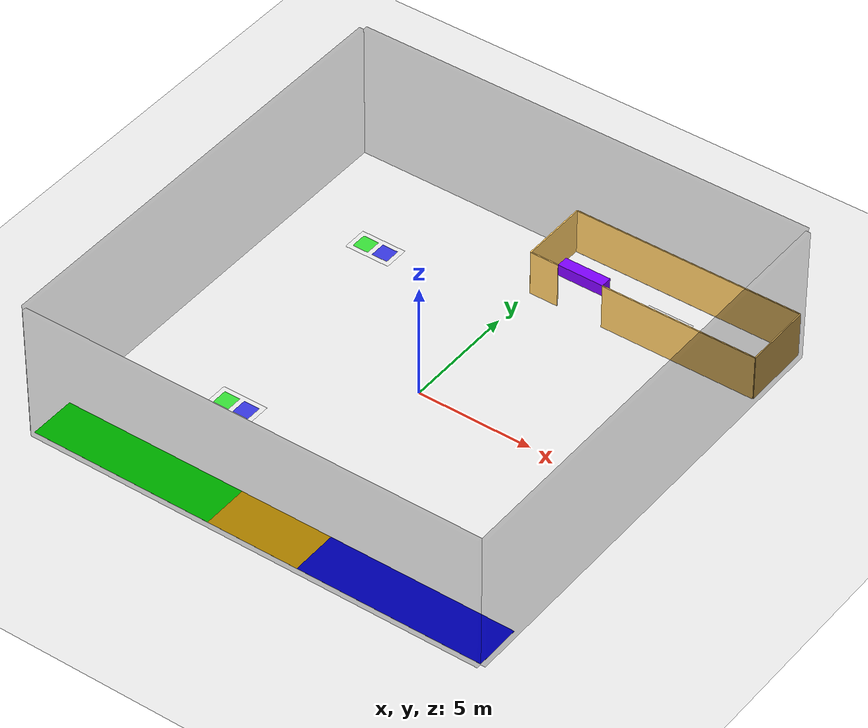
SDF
<sdf version="1.11">
 <world name="safmc_d2">
  <gravity>0 0 -9.8000000000000007</gravity>
  <magnetic_field>6.0000000000000002e-06 2.3e-05 -4.1999999999999998e-05</magnetic_field>
  <wind><linear_velocity>0 0 0</linear_velocity></wind>
  <physics name="default_physics" default="false" type="ode">
   <max_step_size>0.0040000000000000001</max_step_size>
   <real_time_factor>1</real_time_factor>
   <max_contacts>20</max_contacts>
  </physics>
  <model name="ground_plane">
   <static>true</static>
   <link name="link">
    <inertial>
     <mass>1</mass>
     <inertia><ixx>1</ixx><ixy>0</ixy><ixz>0</ixz><iyy>1</iyy><iyz>0</iyz><izz>1</izz></inertia>
    </inertial>
    <collision name="collision">
     <geometry><plane><normal>0 0 1</normal><size>1 1</size></plane></geometry>
     <surface>
      <contact><collide_bitmask>255</collide_bitmask></contact>
      <friction><ode><mu>1</mu><mu2>1</mu2><slip1>0</slip1><slip2>0</slip2><fdir1>0 0 0</fdir1></ode></friction>
     </surface>
    </collision>
    <visual name="visual">
     <geometry><plane><normal>0 0 1</normal><size>100 100</size></plane></geometry>
     <visibility_flags>4294967295</visibility_flags>
     <material>
      <ambient>0.800000012 0.800000012 0.800000012 1</ambient>
      <diffuse>0.800000012 0.800000012 0.800000012 1</diffuse>
      <specular>0.800000012 0.800000012 0.800000012 1</specular>
      <emissive>0 0 0 1</emissive>
      <render_order>0</render_order>
      <lighting>true</lighting>
      <double_sided>false</double_sided>
      <shader type="pixel"/>
     </material>
    </visual>
   </link>
  </model>
  <include>
   <uri>model://wall</uri>
   <name>front_wall</name>
   <pose>0 -10.1 2 0 0 0</pose>
   <static>true</static>
  </include>
  <include>
   <uri>model://wall</uri>
   <name>back_wall</name>
   <pose>0 10.1 2 0 0 0</pose>
   <static>true</static>
  </include>
  <include>
   <uri>model://wall</uri>
   <name>left_wall</name>
   <pose>-10.1 0 2 0 0 1.5707959999999999</pose>
   <static>true</static>
  </include>
  <include>
   <uri>model://wall</uri>
   <name>right_wall</name>
   <pose>10.1 0 2 0 0 1.5707959999999999</pose>
   <static>true</static>
  </include>
  <model name="launch_zone">
   <static>true</static>
   <pose>0 -9 0.001 0 0 0</pose>
   <link name="link">
    <inertial>
     <mass>1</mass>
     <inertia><ixx>1</ixx><ixy>0</ixy><ixz>0</ixz><iyy>1</iyy><iyz>0</iyz><izz>1</izz></inertia>
    </inertial>
    <visual name="visual">
     <geometry><plane><normal>0 0 1</normal><size>4 2</size></plane></geometry>
     <visibility_flags>4294967295</visibility_flags>
     <material>
      <ambient>1 0.75 0 1</ambient>
      <diffuse>1 0.75 0 1</diffuse>
      <specular>1 0.75 0 1</specular>
      <emissive>0 0 0 1</emissive>
      <render_order>0</render_order>
      <lighting>true</lighting>
      <double_sided>false</double_sided>
      <shader type="pixel"/>
     </material>
    </visual>
   </link>
  </model>
  <model name="green_supply_zone">
   <static>true</static>
   <pose>-6 -9 0 0 0 0</pose>
   <link name="link">
    <pose>0 0 0.001 0 0 0</pose>
    <inertial>
     <mass>1</mass>
     <inertia><ixx>1</ixx><ixy>0</ixy><ixz>0</ixz><iyy>1</iyy><iyz>0</iyz><izz>1</izz></inertia>
    </inertial>
    <visual name="visual">
     <geometry><plane><normal>0 0 1</normal><size>8 2</size></plane></geometry>
     <visibility_flags>4294967295</visibility_flags>
     <material>
      <ambient>0 1 0 1</ambient>
      <diffuse>0 1 0 1</diffuse>
      <specular>0 1 0 1</specular>
      <emissive>0 0 0 1</emissive>
      <render_order>0</render_order>
      <lighting>true</lighting>
      <double_sided>false</double_sided>
      <shader type="pixel"/>
     </material>
    </visual>
   </link>
  </model>
  <model name="blue_supply_zone">
   <static>true</static>
   <pose>6 -9 0 0 0 0</pose>
   <link name="link">
    <pose>0 0 0.001 0 0 0</pose>
    <inertial>
     <mass>1</mass>
     <inertia><ixx>1</ixx><ixy>0</ixy><ixz>0</ixz><iyy>1</iyy><iyz>0</iyz><izz>1</izz></inertia>
    </inertial>
    <visual name="visual">
     <geometry><plane><normal>0 0 1</normal><size>8 2</size></plane></geometry>
     <visibility_flags>4294967295</visibility_flags>
     <material>
      <ambient>0 0 1 1</ambient>
      <diffuse>0 0 1 1</diffuse>
      <specular>0 0 1 1</specular>
      <emissive>0 0 0 1</emissive>
      <render_order>0</render_order>
      <lighting>true</lighting>
      <double_sided>false</double_sided>
      <shader type="pixel"/>
     </material>
    </visual>
   </link>
  </model>
  <model name="drop_zone_1">
   <static>true</static>
   <pose>-6.2000000000000002 5.5999999999999996 0 0 0 0</pose>
   <link name="link">
    <inertial>
     <mass>1</mass>
     <inertia><ixx>1</ixx><ixy>0</ixy><ixz>0</ixz><iyy>1</iyy><iyz>0</iyz><izz>1</izz></inertia>
    </inertial>
    <visual name="drop_zone_visual">
     <pose>0 0 0.001 0 0 0</pose>
     <geometry><plane><normal>0 0 1</normal><size>2 1.1000000000000001</size></plane></geometry>
     <visibility_flags>4294967295</visibility_flags>
     <material>
      <ambient>0.899999976 0.899999976 0.899999976 0.5</ambient>
      <diffuse>0.899999976 0.899999976 0.899999976 0.5</diffuse>
      <specular>0.899999976 0.899999976 0.899999976 0.5</specular>
      <emissive>0 0 0 1</emissive>
      <render_order>0</render_order>
      <lighting>true</lighting>
      <double_sided>false</double_sided>
      <shader type="pixel"/>
     </material>
    </visual>
    <visual name="green_hotspot_visual">
     <pose>-0.45000000000000001 0 0.002 0 0 0</pose>
     <geometry><plane><normal>0 0 1</normal><size>0.69999999999999996 0.69999999999999996</size></plane></geometry>
     <visibility_flags>4294967295</visibility_flags>
     <material>
      <ambient>0 0.899999976 0 0.75</ambient>
      <diffuse>0 0.899999976 0 0.75</diffuse>
      <specular>0 0.899999976 0 0.75</specular>
      <emissive>0 0 0 1</emissive>
      <render_order>0</render_order>
      <lighting>true</lighting>
      <double_sided>false</double_sided>
      <shader type="pixel"/>
     </material>
    </visual>
    <visual name="blue_hotspot_visual">
     <pose>0.45000000000000001 0 0.002 0 0 0</pose>
     <geometry><plane><normal>0 0 1</normal><size>0.69999999999999996 0.69999999999999996</size></plane></geometry>
     <visibility_flags>4294967295</visibility_flags>
     <material>
      <ambient>0 0 0.899999976 0.75</ambient>
      <diffuse>0 0 0.899999976 0.75</diffuse>
      <specular>0 0 0.899999976 0.75</specular>
      <emissive>0 0 0 1</emissive>
      <render_order>0</render_order>
      <lighting>true</lighting>
      <double_sided>false</double_sided>
      <shader type="pixel"/>
     </material>
    </visual>
   </link>
  </model>
  <model name="drop_zone_2">
   <static>true</static>
   <pose>-5 -4.5 0 0 0 0</pose>
   <link name="link">
    <inertial>
     <mass>1</mass>
     <inertia><ixx>1</ixx><ixy>0</ixy><ixz>0</ixz><iyy>1</iyy><iyz>0</iyz><izz>1</izz></inertia>
    </inertial>
    <visual name="drop_zone_visual">
     <pose>0 0 0.001 0 0 0</pose>
     <geometry><plane><normal>0 0 1</normal><size>2 1.1000000000000001</size></plane></geometry>
     <visibility_flags>4294967295</visibility_flags>
     <material>
      <ambient>0.899999976 0.899999976 0.899999976 0.5</ambient>
      <diffuse>0.899999976 0.899999976 0.899999976 0.5</diffuse>
      <specular>0.899999976 0.899999976 0.899999976 0.5</specular>
      <emissive>0 0 0 1</emissive>
      <render_order>0</render_order>
      <lighting>true</lighting>
      <double_sided>false</double_sided>
      <shader type="pixel"/>
     </material>
    </visual>
    <visual name="green_hotspot_visual">
     <pose>-0.45000000000000001 0 0.002 0 0 0</pose>
     <geometry><plane><normal>0 0 1</normal><size>0.69999999999999996 0.69999999999999996</size></plane></geometry>
     <visibility_flags>4294967295</visibility_flags>
     <material>
      <ambient>0 0.899999976 0 0.75</ambient>
      <diffuse>0 0.899999976 0 0.75</diffuse>
      <specular>0 0.899999976 0 0.75</specular>
      <emissive>0 0 0 1</emissive>
      <render_order>0</render_order>
      <lighting>true</lighting>
      <double_sided>false</double_sided>
      <shader type="pixel"/>
     </material>
    </visual>
    <visual name="blue_hotspot_visual">
     <pose>0.45000000000000001 0 0.002 0 0 0</pose>
     <geometry><plane><normal>0 0 1</normal><size>0.69999999999999996 0.69999999999999996</size></plane></geometry>
     <visibility_flags>4294967295</visibility_flags>
     <material>
      <ambient>0 0 0.899999976 0.75</ambient>
      <diffuse>0 0 0.899999976 0.75</diffuse>
      <specular>0 0 0.899999976 0.75</specular>
      <emissive>0 0 0 1</emissive>
      <render_order>0</render_order>
      <lighting>true</lighting>
      <double_sided>false</double_sided>
      <shader type="pixel"/>
     </material>
    </visual>
   </link>
  </model>
  <model name="drop_zone_3">
   <static>true</static>
   <pose>7.2000000000000002 0.40000000000000002 0 0 0 1.5707959999999999</pose>
   <link name="link">
    <inertial>
     <mass>1</mass>
     <inertia><ixx>1</ixx><ixy>0</ixy><ixz>0</ixz><iyy>1</iyy><iyz>0</iyz><izz>1</izz></inertia>
    </inertial>
    <visual name="drop_zone_visual">
     <pose>0 0 0.001 0 0 0</pose>
     <geometry><plane><normal>0 0 1</normal><size>2 1.1000000000000001</size></plane></geometry>
     <visibility_flags>4294967295</visibility_flags>
     <material>
      <ambient>0.899999976 0.899999976 0.899999976 0.5</ambient>
      <diffuse>0.899999976 0.899999976 0.899999976 0.5</diffuse>
      <specular>0.899999976 0.899999976 0.899999976 0.5</specular>
      <emissive>0 0 0 1</emissive>
      <render_order>0</render_order>
      <lighting>true</lighting>
      <double_sided>false</double_sided>
      <shader type="pixel"/>
     </material>
    </visual>
    <visual name="green_hotspot_visual">
     <pose>-0.45000000000000001 0 0.002 0 0 0</pose>
     <geometry><plane><normal>0 0 1</normal><size>0.69999999999999996 0.69999999999999996</size></plane></geometry>
     <visibility_flags>4294967295</visibility_flags>
     <material>
      <ambient>0 0.899999976 0 0.75</ambient>
      <diffuse>0 0.899999976 0 0.75</diffuse>
      <specular>0 0.899999976 0 0.75</specular>
      <emissive>0 0 0 1</emissive>
      <render_order>0</render_order>
      <lighting>true</lighting>
      <double_sided>false</double_sided>
      <shader type="pixel"/>
     </material>
    </visual>
    <visual name="blue_hotspot_visual">
     <pose>0.45000000000000001 0 0.002 0 0 0</pose>
     <geometry><plane><normal>0 0 1</normal><size>0.69999999999999996 0.69999999999999996</size></plane></geometry>
     <visibility_flags>4294967295</visibility_flags>
     <material>
      <ambient>0 0 0.899999976 0.75</ambient>
      <diffuse>0 0 0.899999976 0.75</diffuse>
      <specular>0 0 0.899999976 0.75</specular>
      <emissive>0 0 0 1</emissive>
      <render_order>0</render_order>
      <lighting>true</lighting>
      <double_sided>false</double_sided>
      <shader type="pixel"/>
     </material>
    </visual>
   </link>
  </model>
  <model name="drop_zone_4">
   <static>true</static>
   <pose>5 8.5 0 0 0 0</pose>
   <link name="link">
    <inertial>
     <mass>1</mass>
     <inertia><ixx>1</ixx><ixy>0</ixy><ixz>0</ixz><iyy>1</iyy><iyz>0</iyz><izz>1</izz></inertia>
    </inertial>
    <visual name="drop_zone_visual">
     <pose>0 0 0.001 0 0 0</pose>
     <geometry><plane><normal>0 0 1</normal><size>2 1.1000000000000001</size></plane></geometry>
     <visibility_flags>4294967295</visibility_flags>
     <material>
      <ambient>0.899999976 0.899999976 0.899999976 0.5</ambient>
      <diffuse>0.899999976 0.899999976 0.899999976 0.5</diffuse>
      <specular>0.899999976 0.899999976 0.899999976 0.5</specular>
      <emissive>0 0 0 1</emissive>
      <render_order>0</render_order>
      <lighting>true</lighting>
      <double_sided>false</double_sided>
      <shader type="pixel"/>
     </material>
    </visual>
    <visual name="green_hotspot_visual">
     <pose>-0.45000000000000001 0 0.002 0 0 0</pose>
     <geometry><plane><normal>0 0 1</normal><size>0.69999999999999996 0.69999999999999996</size></plane></geometry>
     <visibility_flags>4294967295</visibility_flags>
     <material>
      <ambient>0 0.899999976 0 0.75</ambient>
      <diffuse>0 0.899999976 0 0.75</diffuse>
      <specular>0 0.899999976 0 0.75</specular>
      <emissive>0 0 0 1</emissive>
      <render_order>0</render_order>
      <lighting>true</lighting>
      <double_sided>false</double_sided>
      <shader type="pixel"/>
     </material>
    </visual>
    <visual name="blue_hotspot_visual">
     <pose>0.45000000000000001 0 0.002 0 0 0</pose>
     <geometry><plane><normal>0 0 1</normal><size>0.69999999999999996 0.69999999999999996</size></plane></geometry>
     <visibility_flags>4294967295</visibility_flags>
     <material>
      <ambient>0 0 0.899999976 0.75</ambient>
      <diffuse>0 0 0.899999976 0.75</diffuse>
      <specular>0 0 0.899999976 0.75</specular>
      <emissive>0 0 0 1</emissive>
      <render_order>0</render_order>
      <lighting>true</lighting>
      <double_sided>false</double_sided>
      <shader type="pixel"/>
     </material>
    </visual>
   </link>
  </model>
  <model name="bonus_zone">
   <static>true</static>
   <pose>5 8.5 1 0 0 0</pose>
   <link name="link">
    <inertial>
     <mass>1</mass>
     <inertia><ixx>1</ixx><ixy>0</ixy><ixz>0</ixz><iyy>1</iyy><iyz>0</iyz><izz>1</izz></inertia>
    </inertial>
    <collision name="bonus_zone_left_wall_collision">
     <pose>-5 0 0 0 0 0</pose>
     <geometry><box><size>0.050000000000000003 3 2</size></box></geometry>
     <surface>
      <contact><collide_bitmask>255</collide_bitmask></contact>
      <friction><ode><mu>1</mu><mu2>1</mu2><slip1>0</slip1><slip2>0</slip2><fdir1>0 0 0</fdir1></ode></friction>
     </surface>
    </collision>
    <collision name="bonus_zone_right_wall_collision">
     <pose>5 0 0 0 0 0</pose>
     <geometry><box><size>0.050000000000000003 3 2</size></box></geometry>
     <surface>
      <contact><collide_bitmask>255</collide_bitmask></contact>
      <friction><ode><mu>1</mu><mu2>1</mu2><slip1>0</slip1><slip2>0</slip2><fdir1>0 0 0</fdir1></ode></friction>
     </surface>
    </collision>
    <collision name="bonus_zone_front_wall_left_part_collision">
     <pose>-4.3786129863714276 -1.5 0 0 0 0</pose>
     <geometry><box><size>1.2427740272571457 0.050000000000000003 2</size></box></geometry>
     <surface>
      <contact><collide_bitmask>255</collide_bitmask></contact>
      <friction><ode><mu>1</mu><mu2>1</mu2><slip1>0</slip1><slip2>0</slip2><fdir1>0 0 0</fdir1></ode></friction>
     </surface>
    </collision>
    <collision name="bonus_zone_front_wall_right_part_collision">
     <pose>1.6213870136285728 -1.5 0 0 0 0</pose>
     <geometry><box><size>6.7572259727428543 0.050000000000000003 2</size></box></geometry>
     <surface>
      <contact><collide_bitmask>255</collide_bitmask></contact>
      <friction><ode><mu>1</mu><mu2>1</mu2><slip1>0</slip1><slip2>0</slip2><fdir1>0 0 0</fdir1></ode></friction>
     </surface>
    </collision>
    <collision name="bonus_zone_back_wall_collision">
     <pose>0 1.5 0 0 0 0</pose>
     <geometry><box><size>10 0.050000000000000003 2</size></box></geometry>
     <surface>
      <contact><collide_bitmask>255</collide_bitmask></contact>
      <friction><ode><mu>1</mu><mu2>1</mu2><slip1>0</slip1><slip2>0</slip2><fdir1>0 0 0</fdir1></ode></friction>
     </surface>
    </collision>
    <collision name="bonus_zone_high_beam_collision">
     <pose>-2.7572259727428543 -1.25 0.75 0 0 0</pose>
     <geometry><box><size>2 0.5 0.5</size></box></geometry>
     <surface>
      <contact><collide_bitmask>255</collide_bitmask></contact>
      <friction><ode><mu>1</mu><mu2>1</mu2><slip1>0</slip1><slip2>0</slip2><fdir1>0 0 0</fdir1></ode></friction>
     </surface>
    </collision>
    <visual name="bonus_zone_left_wall_visual">
     <pose>-5 0 0 0 0 0</pose>
     <geometry><box><size>0.050000000000000003 3 2</size></box></geometry>
     <visibility_flags>4294967295</visibility_flags>
     <material>
      <ambient>1 0.800000012 0.400000006 1</ambient>
      <diffuse>1 0.800000012 0.400000006 1</diffuse>
      <specular>1 0.800000012 0.400000006 1</specular>
      <emissive>0 0 0 1</emissive>
      <render_order>0</render_order>
      <lighting>true</lighting>
      <double_sided>false</double_sided>
      <shader type="pixel"/>
     </material>
    </visual>
    <visual name="bonus_zone_right_wall_visual">
     <pose>5 0 0 0 0 0</pose>
     <geometry><box><size>0.050000000000000003 3 2</size></box></geometry>
     <visibility_flags>4294967295</visibility_flags>
     <material>
      <ambient>1 0.800000012 0.400000006 1</ambient>
      <diffuse>1 0.800000012 0.400000006 1</diffuse>
      <specular>1 0.800000012 0.400000006 1</specular>
      <emissive>0 0 0 1</emissive>
      <render_order>0</render_order>
      <lighting>true</lighting>
      <double_sided>false</double_sided>
      <shader type="pixel"/>
     </material>
    </visual>
    <visual name="bonus_zone_front_wall_left_part_visual">
     <pose>-4.3786129863714276 -1.5 0 0 0 0</pose>
     <geometry><box><size>1.2427740272571457 0.050000000000000003 2</size></box></geometry>
     <visibility_flags>4294967295</visibility_flags>
     <material>
      <ambient>1 0.800000012 0.400000006 1</ambient>
      <diffuse>1 0.800000012 0.400000006 1</diffuse>
      <specular>1 0.800000012 0.400000006 1</specular>
      <emissive>0 0 0 1</emissive>
      <render_order>0</render_order>
      <lighting>true</lighting>
      <double_sided>false</double_sided>
      <shader type="pixel"/>
     </material>
    </visual>
    <visual name="bonus_zone_front_wall_right_part_visual">
     <pose>1.6213870136285728 -1.5 0 0 0 0</pose>
     <geometry><box><size>6.7572259727428543 0.050000000000000003 2</size></box></geometry>
     <visibility_flags>4294967295</visibility_flags>
     <material>
      <ambient>1 0.800000012 0.400000006 1</ambient>
      <diffuse>1 0.800000012 0.400000006 1</diffuse>
      <specular>1 0.800000012 0.400000006 1</specular>
      <emissive>0 0 0 1</emissive>
      <render_order>0</render_order>
      <lighting>true</lighting>
      <double_sided>false</double_sided>
      <shader type="pixel"/>
     </material>
    </visual>
    <visual name="bonus_zone_back_wall_visual">
     <pose>0 1.5 0 0 0 0</pose>
     <geometry><box><size>10 0.050000000000000003 2</size></box></geometry>
     <visibility_flags>4294967295</visibility_flags>
     <material>
      <ambient>1 0.800000012 0.400000006 1</ambient>
      <diffuse>1 0.800000012 0.400000006 1</diffuse>
      <specular>1 0.800000012 0.400000006 1</specular>
      <emissive>0 0 0 1</emissive>
      <render_order>0</render_order>
      <lighting>true</lighting>
      <double_sided>false</double_sided>
      <shader type="pixel"/>
     </material>
    </visual>
    <visual name="bonus_zone_high_beam_visual">
     <pose>-2.7572259727428543 -1.25 0.75 0 0 0</pose>
     <geometry><box><size>2 0.5 0.5</size></box></geometry>
     <visibility_flags>4294967295</visibility_flags>
     <material>
      <ambient>0.5 0 1 1</ambient>
      <diffuse>0.5 0 1 1</diffuse>
      <specular>0.5 0 1 1</specular>
      <emissive>0 0 0 1</emissive>
      <render_order>0</render_order>
      <lighting>true</lighting>
      <double_sided>false</double_sided>
      <shader type="pixel"/>
     </material>
    </visual>
   </link>
  </model>
  <light name="sun" type="directional">
   <pose>0 0 500 0 0 0</pose>
   <intensity>1</intensity>
   <direction>0.001 0.625 -0.78000000000000003</direction>
   <diffuse>0.903999984 0.903999984 0.903999984 1</diffuse>
   <specular>0.270999998 0.270999998 0.270999998 1</specular>
   <attenuation><range>2000</range><linear>0</linear><constant>1</constant><quadratic>0</quadratic></attenuation>
   <spot><inner_angle>0</inner_angle><outer_angle>0</outer_angle><falloff>0</falloff></spot>
  </light>
  <spherical_coordinates>
   <surface_model>EARTH_WGS84</surface_model>
   <latitude_deg>47.397971057728974</latitude_deg>
   <longitude_deg>8.5461637398001464</longitude_deg>
   <elevation>0</elevation>
   <heading_deg>0</heading_deg>
   <world_frame_orientation>ENU</world_frame_orientation>
   <surface_axis_equatorial>6378137</surface_axis_equatorial>
   <surface_axis_polar>6356752.3142449996</surface_axis_polar>
  </spherical_coordinates>
  <atmosphere type="adiabatic">
   <temperature>288.14999999999998</temperature>
   <pressure>101325</pressure>
   <temperature_gradient>-0.0064999999999999997</temperature_gradient>
  </atmosphere>
  <scene>
   <ambient>0.400000006 0.400000006 0.400000006 1</ambient>
   <background>0.699999988 0.699999988 0.699999988 1</background>
   <grid>false</grid>
   <origin_visual>true</origin_visual>
   <shadows>true</shadows>
  </scene>
  <plugin name="gz::sim::systems::Physics" filename="gz-sim-physics-system"/>
  <plugin name="gz::sim::systems::UserCommands" filename="gz-sim-user-commands-system"/>
  <plugin name="gz::sim::systems::SceneBroadcaster" filename="gz-sim-scene-broadcaster-system"/>
  <plugin name="gz::sim::systems::Contact" filename="gz-sim-contact-system"/>
  <plugin name="gz::sim::systems::Imu" filename="gz-sim-imu-system"/>
  <plugin name="gz::sim::systems::AirPressure" filename="gz-sim-air-pressure-system"/>
  <plugin name="gz::sim::systems::ApplyLinkWrench" filename="gz-sim-apply-link-wrench-system"/>
  <plugin name="gz::sim::systems::NavSat" filename="gz-sim-navsat-system"/>
  <plugin name="gz::sim::systems::Sensors" filename="gz-sim-sensors-system">
   <render_engine>ogre2</render_engine>
  </plugin>
  <plugin name="gz::sim::systems::PayloadSystem" filename="libPayloadSystem.so"/>
  <plugin name="gz::sim::systems::PositionSystem" filename="libPositionSystem.so"/>
 </world>
</sdf>

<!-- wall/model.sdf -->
<sdf version="1.11">
    <model name="wall">
        <pose>0 0 2.0 0 0 0</pose>
        <static>true</static>

        <link name="link">

            <visual name="visual">
                <cast_shadows>false</cast_shadows>
                <pose>0 0 0 0 0 0</pose>
                <geometry>
                    <box>
                        <size>20.0 0.2 8.0</size>
                    </box>
                </geometry>
                <material>
                    <ambient>0 0 0 0.3</ambient>
                    <diffuse>0 0 0 0.3</diffuse>
                    <specular>0 0 0 0.3</specular>
                </material>
            </visual>

        </link>
    </model>
</sdf>
